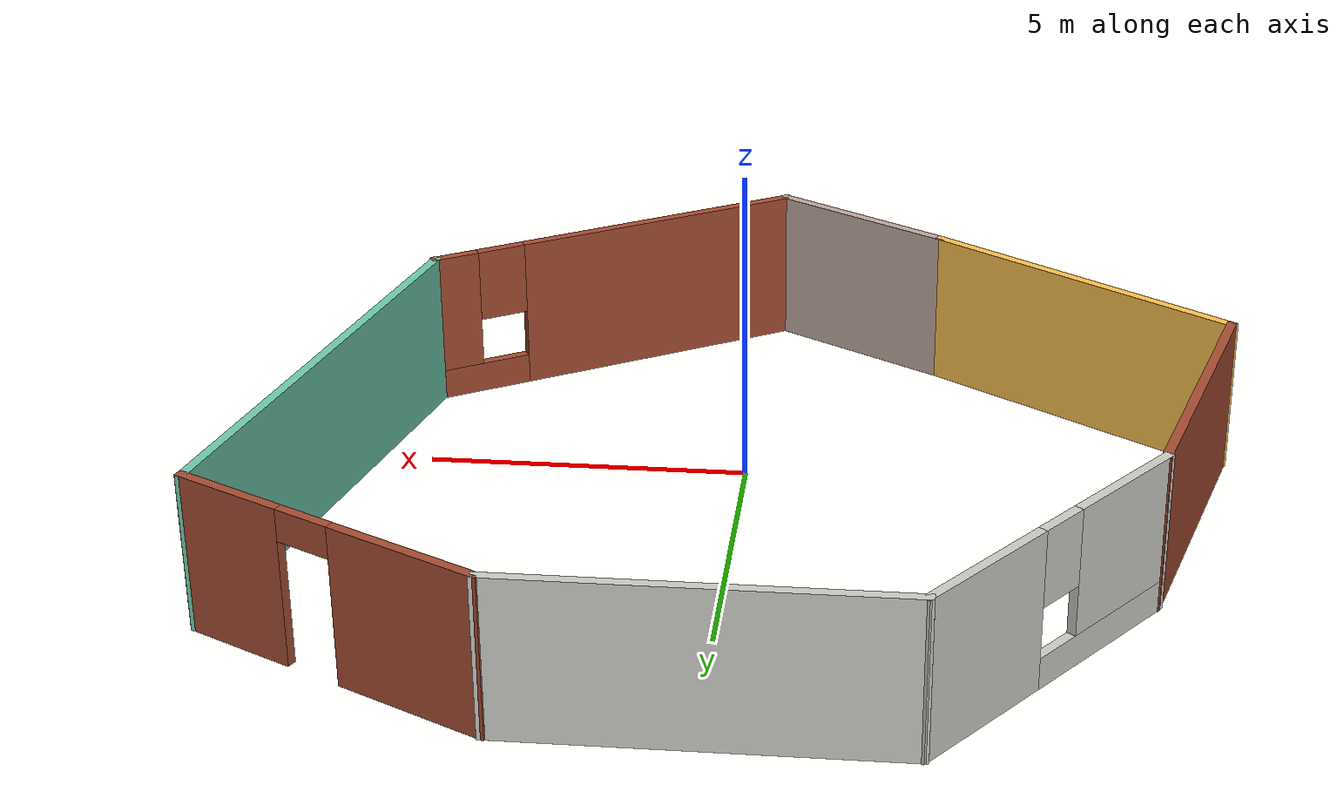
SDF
<?xml version='1.0'?>
<sdf version='1.6'>
  <model name='testworld'>
    <pose frame=''>-0.072859 1.12433 0 0 -0 0</pose>
    <link name='Wall_0'>
      <collision name='Wall_0_Collision'>
        <geometry>
          <box>
            <size>3.25 0.15 2.5</size>
          </box>
        </geometry>
        <pose frame=''>0 0 1.25 0 -0 0</pose>
      </collision>
      <visual name='Wall_0_Visual'>
        <pose frame=''>0 0 1.25 0 -0 0</pose>
        <geometry>
          <box>
            <size>3.25 0.15 2.5</size>
          </box>
        </geometry>
        <material>
          <script>
            <uri>file://media/materials/scripts/gazebo.material</uri>
            <name>Gazebo/Grey</name>
          </script>
          <ambient>0.760784 0.662745 0.627451 1</ambient>
        </material>
        <meta>
          <layer>0</layer>
        </meta>
      </visual>
      <pose frame=''>-1.47464 -5.75933 0 0 0 -0.523547</pose>
    </link>
    <link name='Wall_1'>
      <pose frame=''>2.60386 -4.94683 0 0 -0 0.525753</pose>
      <visual name='Wall_1_Visual_0'>
        <pose frame=''>-0.792022 0 1.25 0 -0 0</pose>
        <geometry>
          <box>
            <size>4.89236 0.15 2.5</size>
          </box>
        </geometry>
        <material>
          <script>
            <uri>file://media/materials/scripts/gazebo.material</uri>
            <name>Gazebo/Bricks</name>
          </script>
          <ambient>1 1 1 1</ambient>
        </material>
        <meta>
          <layer>0</layer>
        </meta>
      </visual>
      <collision name='Wall_1_Collision_0'>
        <geometry>
          <box>
            <size>4.89236 0.15 2.5</size>
          </box>
        </geometry>
        <pose frame=''>-0.792022 0 1.25 0 -0 0</pose>
      </collision>
      <visual name='Wall_1_Visual_1'>
        <pose frame=''>2.44618 0 0.25 0 -0 0</pose>
        <geometry>
          <box>
            <size>1.58404 0.15 0.5</size>
          </box>
        </geometry>
        <material>
          <script>
            <uri>file://media/materials/scripts/gazebo.material</uri>
            <name>Gazebo/Bricks</name>
          </script>
          <ambient>1 1 1 1</ambient>
        </material>
        <meta>
          <layer>0</layer>
        </meta>
      </visual>
      <collision name='Wall_1_Collision_1'>
        <geometry>
          <box>
            <size>1.58404 0.15 0.5</size>
          </box>
        </geometry>
        <pose frame=''>2.44618 0 0.25 0 -0 0</pose>
      </collision>
      <visual name='Wall_1_Visual_2'>
        <pose frame=''>2.84618 0 1.5 0 -0 0</pose>
        <geometry>
          <box>
            <size>0.784043 0.15 2</size>
          </box>
        </geometry>
        <material>
          <script>
            <uri>file://media/materials/scripts/gazebo.material</uri>
            <name>Gazebo/Bricks</name>
          </script>
          <ambient>1 1 1 1</ambient>
        </material>
        <meta>
          <layer>0</layer>
        </meta>
      </visual>
      <collision name='Wall_1_Collision_2'>
        <geometry>
          <box>
            <size>0.784043 0.15 2</size>
          </box>
        </geometry>
        <pose frame=''>2.84618 0 1.5 0 -0 0</pose>
      </collision>
      <visual name='Wall_1_Visual_3'>
        <pose frame=''>2.05416 0 1.9 0 -0 0</pose>
        <geometry>
          <box>
            <size>0.8 0.15 1.2</size>
          </box>
        </geometry>
        <material>
          <script>
            <uri>file://media/materials/scripts/gazebo.material</uri>
            <name>Gazebo/Bricks</name>
          </script>
          <ambient>1 1 1 1</ambient>
        </material>
        <meta>
          <layer>0</layer>
        </meta>
      </visual>
      <collision name='Wall_1_Collision_3'>
        <geometry>
          <box>
            <size>0.8 0.15 1.2</size>
          </box>
        </geometry>
        <pose frame=''>2.05416 0 1.9 0 -0 0</pose>
      </collision>
    </link>
    <link name='Wall_2'>
      <collision name='Wall_2_Collision'>
        <geometry>
          <box>
            <size>7.99998 0.15 2.5</size>
          </box>
        </geometry>
        <pose frame=''>0 0 1.25 0 -0 0</pose>
      </collision>
      <visual name='Wall_2_Visual'>
        <pose frame=''>0 0 1.25 0 -0 0</pose>
        <geometry>
          <box>
            <size>7.99998 0.15 2.5</size>
          </box>
        </geometry>
        <material>
          <script>
            <uri>file://media/materials/scripts/gazebo.material</uri>
            <name>Gazebo/Grey</name>
          </script>
          <ambient>0.435294 0.796078 0.67451 1</ambient>
        </material>
        <meta>
          <layer>0</layer>
        </meta>
      </visual>
      <pose frame=''>6.35586 0.432169 0 0 -0 1.30898</pose>
    </link>
    <link name='Wall_3'>
      <pose frame=''>5.11586 5.37767 0 0 -0 2.66877</pose>
      <visual name='Wall_3_Visual_0'>
        <pose frame=''>-1.70082 0 1.25 0 -0 0</pose>
        <geometry>
          <box>
            <size>1.81639 0.15 2.5</size>
          </box>
        </geometry>
        <material>
          <script>
            <uri>file://media/materials/scripts/gazebo.material</uri>
            <name>Gazebo/Bricks</name>
          </script>
          <ambient>0.996078 0.47451 0.0196078 1</ambient>
        </material>
        <meta>
          <layer>0</layer>
        </meta>
      </visual>
      <collision name='Wall_3_Collision_0'>
        <geometry>
          <box>
            <size>1.81639 0.15 2.5</size>
          </box>
        </geometry>
        <pose frame=''>-1.70082 0 1.25 0 -0 0</pose>
      </collision>
      <visual name='Wall_3_Visual_1'>
        <pose frame=''>1.3582 0 1.25 0 -0 0</pose>
        <geometry>
          <box>
            <size>2.50165 0.15 2.5</size>
          </box>
        </geometry>
        <material>
          <script>
            <uri>file://media/materials/scripts/gazebo.material</uri>
            <name>Gazebo/Bricks</name>
          </script>
          <ambient>0.996078 0.47451 0.0196078 1</ambient>
        </material>
        <meta>
          <layer>0</layer>
        </meta>
      </visual>
      <collision name='Wall_3_Collision_1'>
        <geometry>
          <box>
            <size>2.50165 0.15 2.5</size>
          </box>
        </geometry>
        <pose frame=''>1.3582 0 1.25 0 -0 0</pose>
      </collision>
      <visual name='Wall_3_Visual_2'>
        <pose frame=''>-0.342628 0 2.25 0 -0 0</pose>
        <geometry>
          <box>
            <size>0.9 0.15 0.5</size>
          </box>
        </geometry>
        <material>
          <script>
            <uri>file://media/materials/scripts/gazebo.material</uri>
            <name>Gazebo/Bricks</name>
          </script>
          <ambient>0.996078 0.47451 0.0196078 1</ambient>
        </material>
        <meta>
          <layer>0</layer>
        </meta>
      </visual>
      <collision name='Wall_3_Collision_2'>
        <geometry>
          <box>
            <size>0.9 0.15 0.5</size>
          </box>
        </geometry>
        <pose frame=''>-0.342628 0 2.25 0 -0 0</pose>
      </collision>
    </link>
    <link name='Wall_4'>
      <collision name='Wall_4_Collision'>
        <geometry>
          <box>
            <size>5.99954 0.15 2.5</size>
          </box>
        </geometry>
        <pose frame=''>0 0 1.25 0 -0 0</pose>
      </collision>
      <visual name='Wall_4_Visual'>
        <pose frame=''>0 0 1.25 0 -0 0</pose>
        <geometry>
          <box>
            <size>5.99954 0.15 2.5</size>
          </box>
        </geometry>
        <material>
          <script>
            <uri>file://media/materials/scripts/gazebo.material</uri>
            <name>Gazebo/CeilingTiled</name>
          </script>
          <ambient>1 1 1 1</ambient>
        </material>
        <meta>
          <layer>0</layer>
        </meta>
      </visual>
      <pose frame=''>-0.065141 6.53167 0 0 -0 3.14159</pose>
    </link>
    <link name='Wall_5'>
      <pose frame=''>-4.58414 4.45867 0 0 0 -2.2263</pose>
      <visual name='Wall_5_Visual_0'>
        <pose frame=''>-1.46456 0 1.25 0 -0 0</pose>
        <geometry>
          <box>
            <size>2.45087 0.15 2.5</size>
          </box>
        </geometry>
        <material>
          <script>
            <uri>file://media/materials/scripts/gazebo.material</uri>
            <name>Gazebo/CeilingTiled</name>
          </script>
          <ambient>0.435294 0.796078 0.67451 1</ambient>
        </material>
        <meta>
          <layer>0</layer>
        </meta>
      </visual>
      <collision name='Wall_5_Collision_0'>
        <geometry>
          <box>
            <size>2.45087 0.15 2.5</size>
          </box>
        </geometry>
        <pose frame=''>-1.46456 0 1.25 0 -0 0</pose>
      </collision>
      <visual name='Wall_5_Visual_1'>
        <pose frame=''>1.22543 0 0.25 0 -0 0</pose>
        <geometry>
          <box>
            <size>2.92911 0.15 0.5</size>
          </box>
        </geometry>
        <material>
          <script>
            <uri>file://media/materials/scripts/gazebo.material</uri>
            <name>Gazebo/CeilingTiled</name>
          </script>
          <ambient>0.435294 0.796078 0.67451 1</ambient>
        </material>
        <meta>
          <layer>0</layer>
        </meta>
      </visual>
      <collision name='Wall_5_Collision_1'>
        <geometry>
          <box>
            <size>2.92911 0.15 0.5</size>
          </box>
        </geometry>
        <pose frame=''>1.22543 0 0.25 0 -0 0</pose>
      </collision>
      <visual name='Wall_5_Visual_2'>
        <pose frame=''>1.62543 0 1.5 0 -0 0</pose>
        <geometry>
          <box>
            <size>2.12911 0.15 2</size>
          </box>
        </geometry>
        <material>
          <script>
            <uri>file://media/materials/scripts/gazebo.material</uri>
            <name>Gazebo/CeilingTiled</name>
          </script>
          <ambient>0.435294 0.796078 0.67451 1</ambient>
        </material>
        <meta>
          <layer>0</layer>
        </meta>
      </visual>
      <collision name='Wall_5_Collision_2'>
        <geometry>
          <box>
            <size>2.12911 0.15 2</size>
          </box>
        </geometry>
        <pose frame=''>1.62543 0 1.5 0 -0 0</pose>
      </collision>
      <visual name='Wall_5_Visual_3'>
        <pose frame=''>0.160879 0 1.9 0 -0 0</pose>
        <geometry>
          <box>
            <size>0.8 0.15 1.2</size>
          </box>
        </geometry>
        <material>
          <script>
            <uri>file://media/materials/scripts/gazebo.material</uri>
            <name>Gazebo/CeilingTiled</name>
          </script>
          <ambient>0.435294 0.796078 0.67451 1</ambient>
        </material>
        <meta>
          <layer>0</layer>
        </meta>
      </visual>
      <collision name='Wall_5_Collision_3'>
        <geometry>
          <box>
            <size>0.8 0.15 1.2</size>
          </box>
        </geometry>
        <pose frame=''>0.160879 0 1.9 0 -0 0</pose>
      </collision>
    </link>
    <link name='Wall_6'>
      <collision name='Wall_6_Collision'>
        <geometry>
          <box>
            <size>4.75083 0.15 2.5</size>
          </box>
        </geometry>
        <pose frame=''>0 0 1.25 0 -0 0</pose>
      </collision>
      <visual name='Wall_6_Visual'>
        <pose frame=''>0 0 1.25 0 -0 0</pose>
        <geometry>
          <box>
            <size>4.75083 0.15 2.5</size>
          </box>
        </geometry>
        <material>
          <script>
            <uri>file://media/materials/scripts/gazebo.material</uri>
            <name>Gazebo/Bricks</name>
          </script>
          <ambient>0.921569 0.807843 0.615686 1</ambient>
        </material>
        <meta>
          <layer>0</layer>
        </meta>
      </visual>
      <pose frame=''>-6.77364 0.163669 0 0 0 -1.83265</pose>
    </link>
    <link name='Wall_7'>
      <collision name='Wall_7_Collision'>
        <geometry>
          <box>
            <size>5.5613 0.15 2.5</size>
          </box>
        </geometry>
        <pose frame=''>0 0 1.25 0 -0 0</pose>
      </collision>
      <visual name='Wall_7_Visual'>
        <pose frame=''>0 0 1.25 0 -0 0</pose>
        <geometry>
          <box>
            <size>5.5613 0.15 2.5</size>
          </box>
        </geometry>
        <material>
          <script>
            <uri>file://media/materials/scripts/gazebo.material</uri>
            <name>Gazebo/Grey</name>
          </script>
          <ambient>1 0.764706 0.305882 1</ambient>
        </material>
        <meta>
          <layer>0</layer>
        </meta>
      </visual>
      <pose frame=''>-5.09314 -3.52133 0 0 0 -0.571293</pose>
    </link>
    <static>1</static>
  </model>
</sdf>
